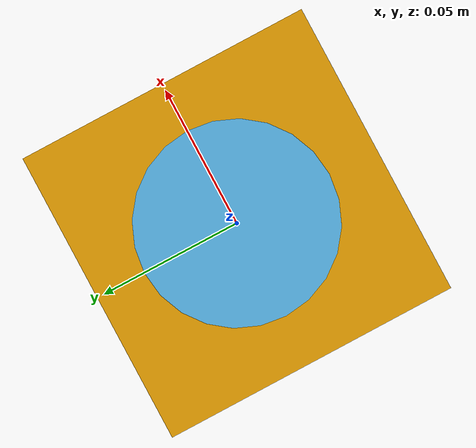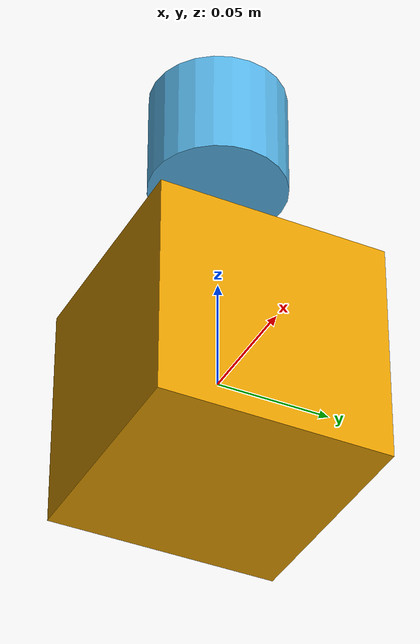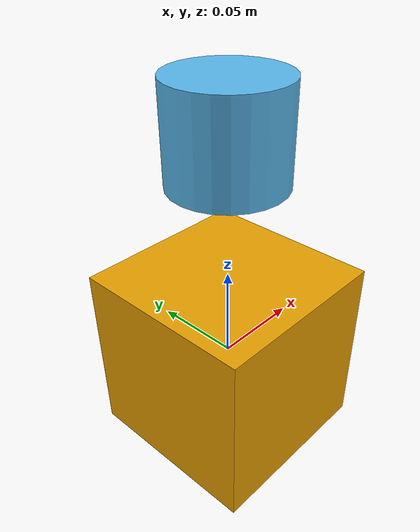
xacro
<?xml version="1.0"?>
<robot xmlns:xacro="http://www.ros.org/wiki/xacro" name="aoba_single_motor_test">

  <!-- Single motor test configuration                                    -->
  <!-- CAN: can1, Motor ID: 127                                           -->

  <link name="base_link">
    <visual>
      <geometry>
        <box size="0.1 0.1 0.1"/>
      </geometry>
    </visual>
  </link>

  <link name="test_link">
    <visual>
      <geometry>
        <cylinder radius="0.03" length="0.05"/>
      </geometry>
      <origin xyz="0 0 0.075" rpy="0 0 0"/>
    </visual>
  </link>

  <joint name="test_joint" type="revolute">
    <parent link="base_link"/>
    <child link="test_link"/>
    <origin xyz="0 0 0.05" rpy="0 0 0"/>
    <axis xyz="0 0 1"/>
    <limit lower="-12.566" upper="12.566" effort="17.0" velocity="44.0"/>
  </joint>

  <!-- ros2_control: single motor on can1 -->
  <ros2_control name="aoba_system" type="system">
    <hardware>
      <plugin>aoba_hardware/AobaHardware</plugin>
    </hardware>

    <joint name="test_joint">
      <param name="can_interface">can1</param>
      <param name="motor_id">127</param>
      <param name="kp">30.0</param>
      <param name="kd">1.0</param>
      <command_interface name="position"/>
      <state_interface name="position"/>
      <state_interface name="velocity"/>
      <state_interface name="effort"/>
    </joint>
  </ros2_control>

</robot>
